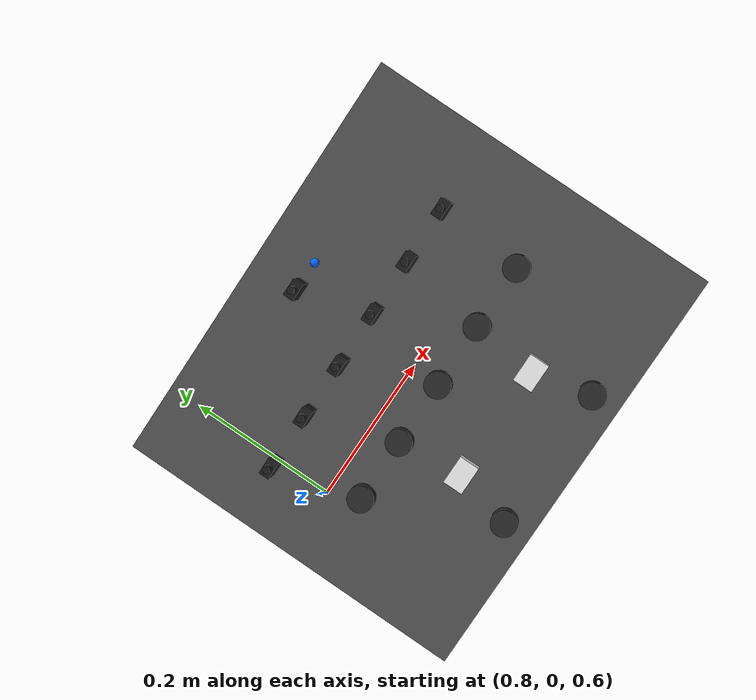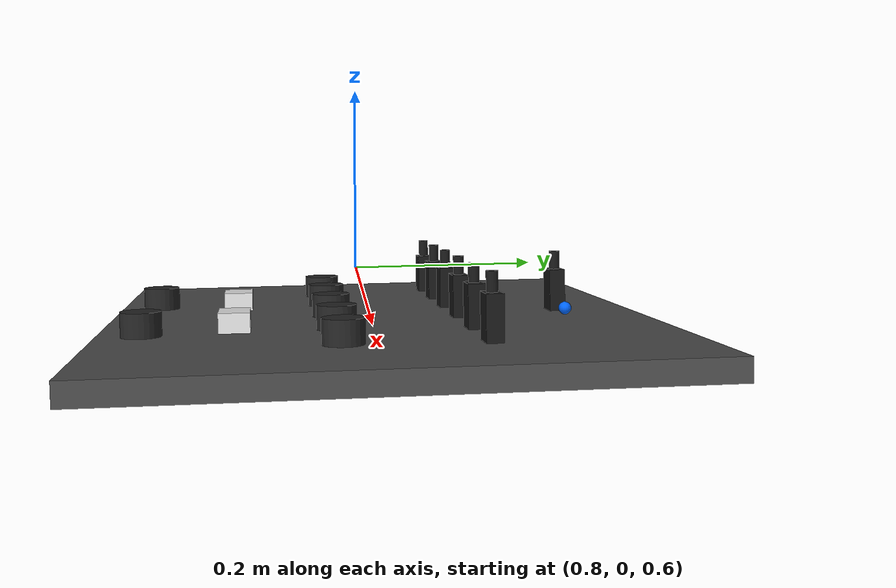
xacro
<?xml version="1.0"?>
<robot name="erc_panel" xmlns:xacro="http://www.ros.org/wiki/xacro">

  <!-- ═══════════════════════════════════════════
       PROPERTIES — tweak these to match real panel
       ═══════════════════════════════════════════ -->
  <xacro:property name="panel_w"    value="0.60"/>  <!-- metres -->
  <xacro:property name="panel_h"    value="0.50"/>
  <xacro:property name="panel_d"    value="0.02"/>

  <!-- switch travel limits (radians) -->
  <xacro:property name="lever_off"  value="-0.436"/>  <!-- -25 deg -->
  <xacro:property name="lever_on"   value=" 0.436"/>  <!--  25 deg -->
  <xacro:property name="rotary_max" value=" 1.571"/>  <!--  90 deg -->
  <xacro:property name="power_max"  value=" 1.571"/>

  <!-- ═══════════════════════════════════════════
       MATERIALS
       ═══════════════════════════════════════════ -->
  <material name="panel_gray">
    <color rgba="0.3 0.3 0.3 1.0"/>
  </material>
  <material name="switch_black">
    <color rgba="0.1 0.1 0.1 1.0"/>
  </material>
  <material name="knob_dark">
    <color rgba="0.15 0.15 0.15 1.0"/>
  </material>
  <material name="socket_white">
    <color rgba="0.9 0.9 0.9 1.0"/>
  </material>
  <material name="led_blue">
    <color rgba="0.0 0.4 1.0 1.0"/>
  </material>

  <!-- ═══════════════════════════════════════════
       MACRO — lever switch
       args: name, x, y (position on panel face)
       ═══════════════════════════════════════════ -->
  <xacro:macro name="lever_switch" params="name x y">

    <!-- static base block mounted to panel -->
    <link name="${name}_base">
      <visual>
        <geometry><box size="0.025 0.015 0.04"/></geometry>
        <material name="switch_black"/>
      </visual>
      <collision>
        <geometry><box size="0.025 0.015 0.04"/></geometry>
      </collision>
      <inertial>
        <mass value="0.05"/>
        <inertia ixx="1e-5" iyy="1e-5" izz="1e-5" ixy="0" ixz="0" iyz="0"/>
      </inertial>
    </link>

    <joint name="${name}_base_joint" type="fixed">
      <parent link="panel_base"/>
      <child  link="${name}_base"/>
      <origin xyz="${x} ${y} ${panel_d/2 + 0.02}" rpy="0 0 0"/>
    </joint>

    <!-- the handle that actually flips -->
    <link name="${name}_handle">
      <visual>
        <geometry><cylinder radius="0.005" length="0.035"/></geometry>
        <material name="switch_black"/>
      </visual>
      <collision>
        <geometry><cylinder radius="0.005" length="0.035"/></geometry>
      </collision>
      <inertial>
        <mass value="0.01"/>
        <inertia ixx="1e-6" iyy="1e-6" izz="1e-6" ixy="0" ixz="0" iyz="0"/>
      </inertial>
    </link>

    <!-- revolute: rotates around X axis (tilts forward/back) -->
    <joint name="${name}_joint" type="revolute">
      <parent link="${name}_base"/>
      <child  link="${name}_handle"/>
      <origin xyz="0 0 0.02" rpy="0 0 0"/>
      <axis xyz="1 0 0"/>
      <limit lower="${lever_off}" upper="${lever_on}"
             effort="5.0" velocity="1.0"/>
      <dynamics damping="0.1" friction="0.05"/>
    </joint>

  </xacro:macro>

  <!-- ═══════════════════════════════════════════
       MACRO — rotary knob
       args: name, x, y, max_angle
       ═══════════════════════════════════════════ -->
  <xacro:macro name="rotary_knob" params="name x y max_angle">

    <link name="${name}_body">
      <visual>
        <geometry><cylinder radius="0.018" length="0.022"/></geometry>
        <material name="knob_dark"/>
      </visual>
      <collision>
        <geometry><cylinder radius="0.018" length="0.022"/></geometry>
      </collision>
      <inertial>
        <mass value="0.03"/>
        <inertia ixx="1e-6" iyy="1e-6" izz="1e-6" ixy="0" ixz="0" iyz="0"/>
      </inertial>
    </link>

    <!-- revolute around Z axis (spins in plane of panel) -->
    <joint name="${name}_joint" type="revolute">
      <parent link="panel_base"/>
      <child  link="${name}_body"/>
      <origin xyz="${x} ${y} ${panel_d/2 + 0.011}" rpy="0 0 0"/>
      <axis xyz="0 0 1"/>
      <limit lower="0.0" upper="${max_angle}"
             effort="3.0" velocity="1.0"/>
      <dynamics damping="0.2" friction="0.1"/>
    </joint>

  </xacro:macro>

  <!-- ═══════════════════════════════════════════
       MACRO — IEC320 C14 socket (fixed, no moving parts)
       ═══════════════════════════════════════════ -->
  <xacro:macro name="iec_socket" params="name x y">

    <link name="${name}_body">
      <visual>
        <geometry><box size="0.040 0.028 0.018"/></geometry>
        <material name="socket_white"/>
      </visual>
      <collision>
        <!-- slightly deeper collision so plug contact registers -->
        <geometry><box size="0.040 0.028 0.025"/></geometry>
      </collision>
      <inertial>
        <mass value="0.02"/>
        <inertia ixx="1e-6" iyy="1e-6" izz="1e-6" ixy="0" ixz="0" iyz="0"/>
      </inertial>
    </link>

    <joint name="${name}_joint" type="fixed">
      <parent link="panel_base"/>
      <child  link="${name}_body"/>
      <origin xyz="${x} ${y} ${panel_d/2 + 0.009}" rpy="0 0 0"/>
    </joint>

  </xacro:macro>

  <!-- ═══════════════════════════════════════════
       PANEL BASE LINK
       ═══════════════════════════════════════════ -->
  <link name="panel_base">
    <visual>
      <geometry>
        <box size="${panel_w} ${panel_h} ${panel_d}"/>
      </geometry>
      <material name="panel_gray"/>
    </visual>
    <collision>
      <geometry>
        <box size="${panel_w} ${panel_h} ${panel_d}"/>
      </geometry>
    </collision>
    <inertial>
      <mass value="5.0"/>
      <inertia ixx="0.05" iyy="0.05" izz="0.05" ixy="0" ixz="0" iyz="0"/>
    </inertial>
  </link>

  <!-- world → panel (static, leaning slightly toward rover) -->
  <joint name="panel_world_joint" type="fixed">
    <parent link="world"/>
    <child  link="panel_base"/>
    <origin xyz="1.0 0.0 0.6" rpy="0 -0.2 0"/>
  </joint>

  <!-- dummy world link required when panel_world_joint references world -->
  <link name="world"/>

  <!-- ═══════════════════════════════════════════
       OP 1 — MAIN SWITCH (top centre)
       ═══════════════════════════════════════════ -->
  <xacro:lever_switch name="main_switch" x="0.0" y="0.18"/>

  <!-- LED indicator next to main switch (fixed visual only) -->
  <link name="main_switch_led">
    <visual>
      <geometry><sphere radius="0.006"/></geometry>
      <material name="led_blue"/>
    </visual>
    <inertial>
      <mass value="0.001"/>
      <inertia ixx="1e-8" iyy="1e-8" izz="1e-8" ixy="0" ixz="0" iyz="0"/>
    </inertial>
  </link>
  <joint name="main_switch_led_joint" type="fixed">
    <parent link="panel_base"/>
    <child  link="main_switch_led"/>
    <origin xyz="0.04 0.18 ${panel_d/2 + 0.006}" rpy="0 0 0"/>
  </joint>

  <!-- ═══════════════════════════════════════════
       OP 2 — LEVER SWITCHES (row of 6)
       ═══════════════════════════════════════════ -->
  <xacro:lever_switch name="lever_1" x="-0.21" y="0.08"/>
  <xacro:lever_switch name="lever_2" x="-0.13" y="0.08"/>
  <xacro:lever_switch name="lever_3" x="-0.05" y="0.08"/>
  <xacro:lever_switch name="lever_4" x=" 0.03" y="0.08"/>
  <xacro:lever_switch name="lever_5" x=" 0.11" y="0.08"/>
  <xacro:lever_switch name="lever_6" x=" 0.19" y="0.08"/>

  <!-- ═══════════════════════════════════════════
       OP 3 — ROTARY SWITCHES (row of 5)
       ═══════════════════════════════════════════ -->
  <xacro:rotary_knob name="rotary_1" x="-0.18" y="-0.04" max_angle="${rotary_max}"/>
  <xacro:rotary_knob name="rotary_2" x="-0.09" y="-0.04" max_angle="${rotary_max}"/>
  <xacro:rotary_knob name="rotary_3" x=" 0.00" y="-0.04" max_angle="${rotary_max}"/>
  <xacro:rotary_knob name="rotary_4" x=" 0.09" y="-0.04" max_angle="${rotary_max}"/>
  <xacro:rotary_knob name="rotary_5" x=" 0.18" y="-0.04" max_angle="${rotary_max}"/>

  <!-- ═══════════════════════════════════════════
       OP 4 — IEC320 C14 SOCKETS (two, side by side)
       ═══════════════════════════════════════════ -->
  <xacro:iec_socket name="socket_a" x="-0.08" y="-0.13"/>
  <xacro:iec_socket name="socket_b" x=" 0.08" y="-0.13"/>

  <!-- ═══════════════════════════════════════════
       OP 5 — ROTARY POWER SWITCHES (two large knobs)
       ═══════════════════════════════════════════ -->
  <xacro:rotary_knob name="power_rotary_1" x="-0.10" y="-0.21" max_angle="${power_max}"/>
  <xacro:rotary_knob name="power_rotary_2" x=" 0.10" y="-0.21" max_angle="${power_max}"/>

</robot>
